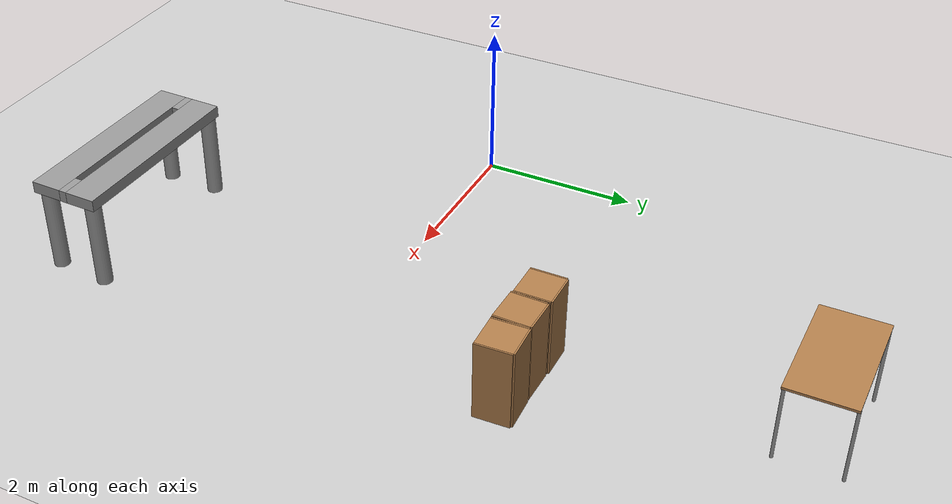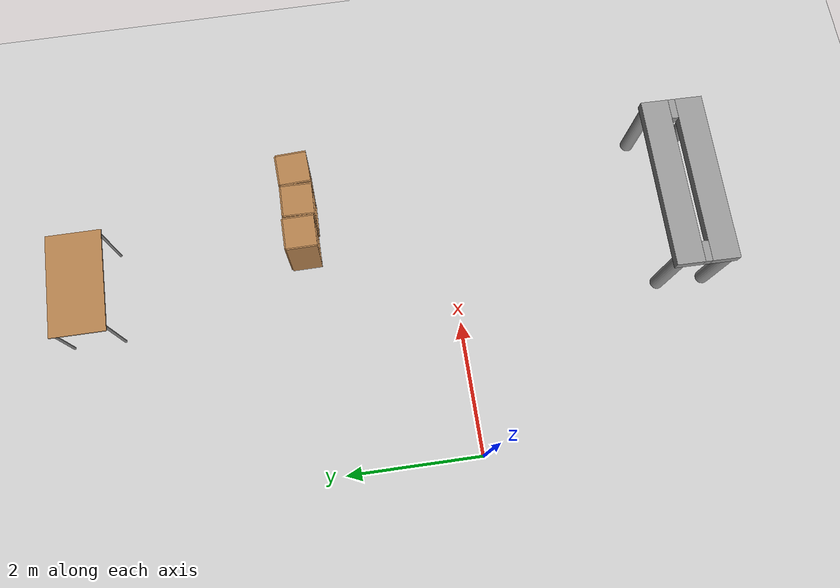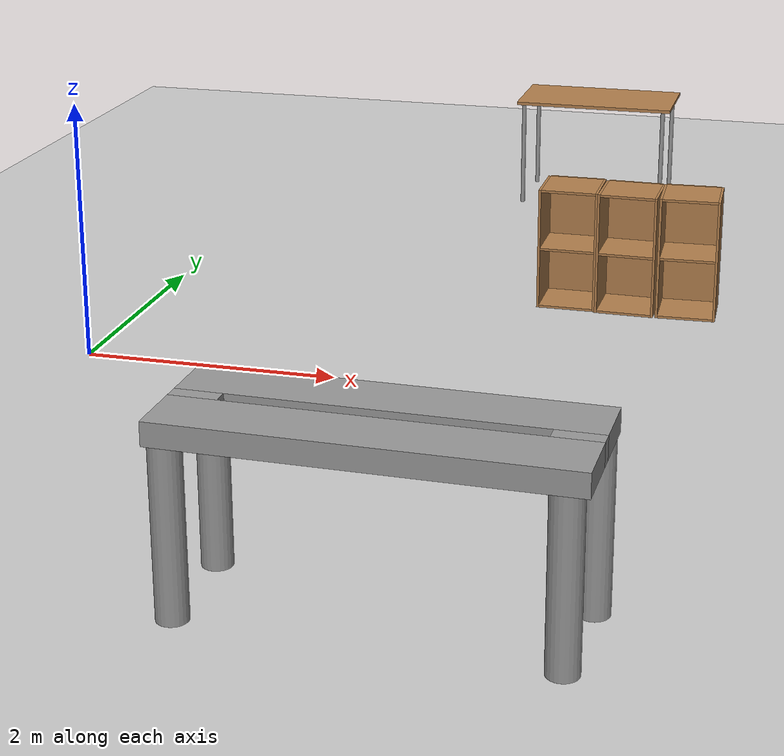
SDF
<sdf version="1.6">
 <world name="default">
  <model name="ground_plane">
   <static>1</static>
   <link name="link">
    <collision name="collision">
     <geometry><plane><normal>0 0 1</normal><size>100 100</size></plane></geometry>
     <surface><friction><ode><mu>100</mu><mu2>50</mu2></ode></friction></surface>
    </collision>
    <visual name="visual">
     <cast_shadows>0</cast_shadows>
     <geometry><plane><normal>0 0 1</normal><size>100 100</size></plane></geometry>
     <material>
      <script><uri>file://media/materials/scripts/gazebo.material</uri><name>Gazebo/Grey</name></script>
     </material>
    </visual>
   </link>
  </model>
  <model name="work_table_0">
   <link name="link_0">
    <pose>1.115 -0.35 -0.3125 0 -0 0</pose>
    <inertial>
     <mass>1</mass>
     <inertia><ixx>0.145833</ixx><ixy>0</ixy><ixz>0</ixz><iyy>0.145833</iyy><iyz>0</iyz><izz>0.125</izz></inertia>
    </inertial>
    <visual name="visual">
     <geometry><cylinder><radius>0.1</radius><length>1.1</length></cylinder></geometry>
     <material>
      <lighting>1</lighting>
      <script><uri>file://media/materials/scripts/gazebo.material</uri><name>Gazebo/Grey</name></script>
      <ambient>0.3 0.3 0.3 1</ambient>
      <diffuse>0.7 0.7 0.7 1</diffuse>
      <specular>0.01 0.01 0.01 1</specular>
      <emissive>0 0 0 1</emissive>
      <shader type="vertex"><normal_map>__default__</normal_map></shader>
     </material>
    </visual>
    <collision name="collision">
     <geometry><cylinder><radius>0.1</radius><length>1.1</length></cylinder></geometry>
     <surface>
      <friction>
       <ode><mu>1</mu><mu2>1</mu2><fdir1>0 0 0</fdir1><slip1>0</slip1><slip2>0</slip2></ode>
       <torsional>
        <coefficient>1</coefficient>
        <patch_radius>0</patch_radius>
        <surface_radius>0</surface_radius>
        <use_patch_radius>1</use_patch_radius>
        <ode><slip>0</slip></ode>
       </torsional>
      </friction>
      <bounce><restitution_coefficient>0</restitution_coefficient><threshold>1e+06</threshold></bounce>
      <contact>
       <collide_without_contact>0</collide_without_contact>
       <collide_without_contact_bitmask>1</collide_without_contact_bitmask>
       <collide_bitmask>1</collide_bitmask>
       <ode>
        <soft_cfm>0</soft_cfm>
        <soft_erp>0.2</soft_erp>
        <kp>1e+13</kp>
        <kd>1</kd>
        <max_vel>0.01</max_vel>
        <min_depth>0</min_depth>
       </ode>
       <bullet>
        <split_impulse>1</split_impulse>
        <split_impulse_penetration_threshold>-0.01</split_impulse_penetration_threshold>
        <soft_cfm>0</soft_cfm>
        <soft_erp>0.2</soft_erp>
        <kp>1e+13</kp>
        <kd>1</kd>
       </bullet>
      </contact>
     </surface>
    </collision>
   </link>
   <link name="link_0_clone">
    <pose>-1.145 -0.35 -0.3125 0 -0 0</pose>
    <inertial>
     <mass>1</mass>
     <inertia><ixx>0.145833</ixx><ixy>0</ixy><ixz>0</ixz><iyy>0.145833</iyy><iyz>0</iyz><izz>0.125</izz></inertia>
    </inertial>
    <visual name="visual">
     <geometry><cylinder><radius>0.1</radius><length>1.1</length></cylinder></geometry>
     <material>
      <lighting>1</lighting>
      <script><uri>file://media/materials/scripts/gazebo.material</uri><name>Gazebo/Grey</name></script>
      <ambient>0.3 0.3 0.3 1</ambient>
      <diffuse>0.7 0.7 0.7 1</diffuse>
      <specular>0.01 0.01 0.01 1</specular>
      <emissive>0 0 0 1</emissive>
      <shader type="vertex"><normal_map>__default__</normal_map></shader>
     </material>
    </visual>
    <collision name="collision">
     <geometry><cylinder><radius>0.1</radius><length>1.1</length></cylinder></geometry>
     <surface>
      <friction>
       <ode><mu>1</mu><mu2>1</mu2><fdir1>0 0 0</fdir1><slip1>0</slip1><slip2>0</slip2></ode>
       <torsional>
        <coefficient>1</coefficient>
        <patch_radius>0</patch_radius>
        <surface_radius>0</surface_radius>
        <use_patch_radius>1</use_patch_radius>
        <ode><slip>0</slip></ode>
       </torsional>
      </friction>
      <bounce><restitution_coefficient>0</restitution_coefficient><threshold>1e+06</threshold></bounce>
      <contact>
       <collide_without_contact>0</collide_without_contact>
       <collide_without_contact_bitmask>1</collide_without_contact_bitmask>
       <collide_bitmask>1</collide_bitmask>
       <ode>
        <soft_cfm>0</soft_cfm>
        <soft_erp>0.2</soft_erp>
        <kp>1e+13</kp>
        <kd>1</kd>
        <max_vel>0.01</max_vel>
        <min_depth>0</min_depth>
       </ode>
       <bullet>
        <split_impulse>1</split_impulse>
        <split_impulse_penetration_threshold>-0.01</split_impulse_penetration_threshold>
        <soft_cfm>0</soft_cfm>
        <soft_erp>0.2</soft_erp>
        <kp>1e+13</kp>
        <kd>1</kd>
       </bullet>
      </contact>
     </surface>
    </collision>
   </link>
   <link name="link_0_clone_0">
    <pose>-1.145 0.35 -0.3125 0 -0 0</pose>
    <inertial>
     <mass>1</mass>
     <inertia><ixx>0.145833</ixx><ixy>0</ixy><ixz>0</ixz><iyy>0.145833</iyy><iyz>0</iyz><izz>0.125</izz></inertia>
    </inertial>
    <visual name="visual">
     <geometry><cylinder><radius>0.1</radius><length>1.1</length></cylinder></geometry>
     <material>
      <lighting>1</lighting>
      <script><uri>file://media/materials/scripts/gazebo.material</uri><name>Gazebo/Grey</name></script>
      <ambient>0.3 0.3 0.3 1</ambient>
      <diffuse>0.7 0.7 0.7 1</diffuse>
      <specular>0.01 0.01 0.01 1</specular>
      <emissive>0 0 0 1</emissive>
      <shader type="vertex"><normal_map>__default__</normal_map></shader>
     </material>
    </visual>
    <collision name="collision">
     <geometry><cylinder><radius>0.1</radius><length>1.1</length></cylinder></geometry>
     <surface>
      <friction>
       <ode><mu>1</mu><mu2>1</mu2><fdir1>0 0 0</fdir1><slip1>0</slip1><slip2>0</slip2></ode>
       <torsional>
        <coefficient>1</coefficient>
        <patch_radius>0</patch_radius>
        <surface_radius>0</surface_radius>
        <use_patch_radius>1</use_patch_radius>
        <ode><slip>0</slip></ode>
       </torsional>
      </friction>
      <bounce><restitution_coefficient>0</restitution_coefficient><threshold>1e+06</threshold></bounce>
      <contact>
       <collide_without_contact>0</collide_without_contact>
       <collide_without_contact_bitmask>1</collide_without_contact_bitmask>
       <collide_bitmask>1</collide_bitmask>
       <ode>
        <soft_cfm>0</soft_cfm>
        <soft_erp>0.2</soft_erp>
        <kp>1e+13</kp>
        <kd>1</kd>
        <max_vel>0.01</max_vel>
        <min_depth>0</min_depth>
       </ode>
       <bullet>
        <split_impulse>1</split_impulse>
        <split_impulse_penetration_threshold>-0.01</split_impulse_penetration_threshold>
        <soft_cfm>0</soft_cfm>
        <soft_erp>0.2</soft_erp>
        <kp>1e+13</kp>
        <kd>1</kd>
       </bullet>
      </contact>
     </surface>
    </collision>
   </link>
   <link name="link_0_clone_1">
    <pose>1.155 0.35 -0.3125 0 -0 0</pose>
    <inertial>
     <mass>1</mass>
     <inertia><ixx>0.145833</ixx><ixy>0</ixy><ixz>0</ixz><iyy>0.145833</iyy><iyz>0</iyz><izz>0.125</izz></inertia>
    </inertial>
    <visual name="visual">
     <geometry><cylinder><radius>0.1</radius><length>1.1</length></cylinder></geometry>
     <material>
      <lighting>1</lighting>
      <script><uri>file://media/materials/scripts/gazebo.material</uri><name>Gazebo/Grey</name></script>
      <ambient>0.3 0.3 0.3 1</ambient>
      <diffuse>0.7 0.7 0.7 1</diffuse>
      <specular>0.01 0.01 0.01 1</specular>
      <emissive>0 0 0 1</emissive>
      <shader type="vertex"><normal_map>__default__</normal_map></shader>
     </material>
    </visual>
    <collision name="collision">
     <geometry><cylinder><radius>0.1</radius><length>1.1</length></cylinder></geometry>
     <surface>
      <friction>
       <ode><mu>1</mu><mu2>1</mu2><fdir1>0 0 0</fdir1><slip1>0</slip1><slip2>0</slip2></ode>
       <torsional>
        <coefficient>1</coefficient>
        <patch_radius>0</patch_radius>
        <surface_radius>0</surface_radius>
        <use_patch_radius>1</use_patch_radius>
        <ode><slip>0</slip></ode>
       </torsional>
      </friction>
      <bounce><restitution_coefficient>0</restitution_coefficient><threshold>1e+06</threshold></bounce>
      <contact>
       <collide_without_contact>0</collide_without_contact>
       <collide_without_contact_bitmask>1</collide_without_contact_bitmask>
       <collide_bitmask>1</collide_bitmask>
       <ode>
        <soft_cfm>0</soft_cfm>
        <soft_erp>0.2</soft_erp>
        <kp>1e+13</kp>
        <kd>1</kd>
        <max_vel>0.01</max_vel>
        <min_depth>0</min_depth>
       </ode>
       <bullet>
        <split_impulse>1</split_impulse>
        <split_impulse_penetration_threshold>-0.01</split_impulse_penetration_threshold>
        <soft_cfm>0</soft_cfm>
        <soft_erp>0.2</soft_erp>
        <kp>1e+13</kp>
        <kd>1</kd>
       </bullet>
      </contact>
     </surface>
    </collision>
   </link>
   <link name="link_1">
    <pose>0.005 -0.25 0.3125 0 -0 0</pose>
    <inertial>
     <mass>1</mass>
     <inertia>
      <ixx>0.166667</ixx>
      <ixy>0</ixy>
      <ixz>0</ixz>
      <iyy>0.166667</iyy>
      <iyz>0</iyz>
      <izz>0.166667</izz>
     </inertia>
    </inertial>
    <visual name="visual">
     <geometry><box><size>2.5 0.4 0.15</size></box></geometry>
     <material>
      <lighting>1</lighting>
      <script><uri>file://media/materials/scripts/gazebo.material</uri><name>Gazebo/Grey</name></script>
      <ambient>0.3 0.3 0.3 1</ambient>
      <diffuse>0.7 0.7 0.7 1</diffuse>
      <specular>0.01 0.01 0.01 1</specular>
      <emissive>0 0 0 1</emissive>
      <shader type="vertex"><normal_map>__default__</normal_map></shader>
     </material>
    </visual>
    <collision name="collision">
     <geometry><box><size>2.5 0.4 0.15</size></box></geometry>
     <surface>
      <friction>
       <ode><mu>1</mu><mu2>1</mu2><fdir1>0 0 0</fdir1><slip1>0</slip1><slip2>0</slip2></ode>
       <torsional>
        <coefficient>1</coefficient>
        <patch_radius>0</patch_radius>
        <surface_radius>0</surface_radius>
        <use_patch_radius>1</use_patch_radius>
        <ode><slip>0</slip></ode>
       </torsional>
      </friction>
      <bounce><restitution_coefficient>0</restitution_coefficient><threshold>1e+06</threshold></bounce>
      <contact>
       <collide_without_contact>0</collide_without_contact>
       <collide_without_contact_bitmask>1</collide_without_contact_bitmask>
       <collide_bitmask>1</collide_bitmask>
       <ode>
        <soft_cfm>0</soft_cfm>
        <soft_erp>0.2</soft_erp>
        <kp>1e+13</kp>
        <kd>1</kd>
        <max_vel>0.01</max_vel>
        <min_depth>0</min_depth>
       </ode>
       <bullet>
        <split_impulse>1</split_impulse>
        <split_impulse_penetration_threshold>-0.01</split_impulse_penetration_threshold>
        <soft_cfm>0</soft_cfm>
        <soft_erp>0.2</soft_erp>
        <kp>1e+13</kp>
        <kd>1</kd>
       </bullet>
      </contact>
     </surface>
    </collision>
   </link>
   <link name="link_1_clone">
    <pose>0.005 0.25 0.3125 0 -0 0</pose>
    <inertial>
     <mass>1</mass>
     <inertia>
      <ixx>0.166667</ixx>
      <ixy>0</ixy>
      <ixz>0</ixz>
      <iyy>0.166667</iyy>
      <iyz>0</iyz>
      <izz>0.166667</izz>
     </inertia>
    </inertial>
    <visual name="visual">
     <geometry><box><size>2.5 0.4 0.15</size></box></geometry>
     <material>
      <lighting>1</lighting>
      <script><uri>file://media/materials/scripts/gazebo.material</uri><name>Gazebo/Grey</name></script>
      <ambient>0.3 0.3 0.3 1</ambient>
      <diffuse>0.7 0.7 0.7 1</diffuse>
      <specular>0.01 0.01 0.01 1</specular>
      <emissive>0 0 0 1</emissive>
      <shader type="vertex"><normal_map>__default__</normal_map></shader>
     </material>
    </visual>
    <collision name="collision">
     <geometry><box><size>2.5 0.4 0.15</size></box></geometry>
     <surface>
      <friction>
       <ode><mu>1</mu><mu2>1</mu2><fdir1>0 0 0</fdir1><slip1>0</slip1><slip2>0</slip2></ode>
       <torsional>
        <coefficient>1</coefficient>
        <patch_radius>0</patch_radius>
        <surface_radius>0</surface_radius>
        <use_patch_radius>1</use_patch_radius>
        <ode><slip>0</slip></ode>
       </torsional>
      </friction>
      <bounce><restitution_coefficient>0</restitution_coefficient><threshold>1e+06</threshold></bounce>
      <contact>
       <collide_without_contact>0</collide_without_contact>
       <collide_without_contact_bitmask>1</collide_without_contact_bitmask>
       <collide_bitmask>1</collide_bitmask>
       <ode>
        <soft_cfm>0</soft_cfm>
        <soft_erp>0.2</soft_erp>
        <kp>1e+13</kp>
        <kd>1</kd>
        <max_vel>0.01</max_vel>
        <min_depth>0</min_depth>
       </ode>
       <bullet>
        <split_impulse>1</split_impulse>
        <split_impulse_penetration_threshold>-0.01</split_impulse_penetration_threshold>
        <soft_cfm>0</soft_cfm>
        <soft_erp>0.2</soft_erp>
        <kp>1e+13</kp>
        <kd>1</kd>
       </bullet>
      </contact>
     </surface>
    </collision>
   </link>
   <link name="link_1_clone_0">
    <pose>-1.095 0 0.3125 0 -0 0</pose>
    <inertial>
     <mass>1</mass>
     <inertia>
      <ixx>0.166667</ixx>
      <ixy>0</ixy>
      <ixz>0</ixz>
      <iyy>0.166667</iyy>
      <iyz>0</iyz>
      <izz>0.166667</izz>
     </inertia>
    </inertial>
    <visual name="visual">
     <geometry><box><size>0.3 0.1 0.15</size></box></geometry>
     <material>
      <lighting>1</lighting>
      <script><uri>file://media/materials/scripts/gazebo.material</uri><name>Gazebo/Grey</name></script>
      <ambient>0.3 0.3 0.3 1</ambient>
      <diffuse>0.7 0.7 0.7 1</diffuse>
      <specular>0.01 0.01 0.01 1</specular>
      <emissive>0 0 0 1</emissive>
      <shader type="vertex"><normal_map>__default__</normal_map></shader>
     </material>
    </visual>
    <collision name="collision">
     <geometry><box><size>0.3 0.1 0.15</size></box></geometry>
     <surface>
      <friction>
       <ode><mu>1</mu><mu2>1</mu2><fdir1>0 0 0</fdir1><slip1>0</slip1><slip2>0</slip2></ode>
       <torsional>
        <coefficient>1</coefficient>
        <patch_radius>0</patch_radius>
        <surface_radius>0</surface_radius>
        <use_patch_radius>1</use_patch_radius>
        <ode><slip>0</slip></ode>
       </torsional>
      </friction>
      <bounce><restitution_coefficient>0</restitution_coefficient><threshold>1e+06</threshold></bounce>
      <contact>
       <collide_without_contact>0</collide_without_contact>
       <collide_without_contact_bitmask>1</collide_without_contact_bitmask>
       <collide_bitmask>1</collide_bitmask>
       <ode>
        <soft_cfm>0</soft_cfm>
        <soft_erp>0.2</soft_erp>
        <kp>1e+13</kp>
        <kd>1</kd>
        <max_vel>0.01</max_vel>
        <min_depth>0</min_depth>
       </ode>
       <bullet>
        <split_impulse>1</split_impulse>
        <split_impulse_penetration_threshold>-0.01</split_impulse_penetration_threshold>
        <soft_cfm>0</soft_cfm>
        <soft_erp>0.2</soft_erp>
        <kp>1e+13</kp>
        <kd>1</kd>
       </bullet>
      </contact>
     </surface>
    </collision>
   </link>
   <link name="link_1_clone_0_clone">
    <pose>1.105 0 0.3125 0 -0 0</pose>
    <inertial>
     <mass>1</mass>
     <inertia>
      <ixx>0.166667</ixx>
      <ixy>0</ixy>
      <ixz>0</ixz>
      <iyy>0.166667</iyy>
      <iyz>0</iyz>
      <izz>0.166667</izz>
     </inertia>
    </inertial>
    <visual name="visual">
     <geometry><box><size>0.3 0.1 0.15</size></box></geometry>
     <material>
      <lighting>1</lighting>
      <script><uri>file://media/materials/scripts/gazebo.material</uri><name>Gazebo/Grey</name></script>
      <ambient>0.3 0.3 0.3 1</ambient>
      <diffuse>0.7 0.7 0.7 1</diffuse>
      <specular>0.01 0.01 0.01 1</specular>
      <emissive>0 0 0 1</emissive>
      <shader type="vertex"><normal_map>__default__</normal_map></shader>
     </material>
    </visual>
    <collision name="collision">
     <geometry><box><size>0.3 0.1 0.15</size></box></geometry>
     <surface>
      <friction>
       <ode><mu>1</mu><mu2>1</mu2><fdir1>0 0 0</fdir1><slip1>0</slip1><slip2>0</slip2></ode>
       <torsional>
        <coefficient>1</coefficient>
        <patch_radius>0</patch_radius>
        <surface_radius>0</surface_radius>
        <use_patch_radius>1</use_patch_radius>
        <ode><slip>0</slip></ode>
       </torsional>
      </friction>
      <bounce><restitution_coefficient>0</restitution_coefficient><threshold>1e+06</threshold></bounce>
      <contact>
       <collide_without_contact>0</collide_without_contact>
       <collide_without_contact_bitmask>1</collide_without_contact_bitmask>
       <collide_bitmask>1</collide_bitmask>
       <ode>
        <soft_cfm>0</soft_cfm>
        <soft_erp>0.2</soft_erp>
        <kp>1e+13</kp>
        <kd>1</kd>
        <max_vel>0.01</max_vel>
        <min_depth>0</min_depth>
       </ode>
       <bullet>
        <split_impulse>1</split_impulse>
        <split_impulse_penetration_threshold>-0.01</split_impulse_penetration_threshold>
        <soft_cfm>0</soft_cfm>
        <soft_erp>0.2</soft_erp>
        <kp>1e+13</kp>
        <kd>1</kd>
       </bullet>
      </contact>
     </surface>
    </collision>
   </link>
   <joint name="link_1_JOINT_0" type="fixed">
    <parent>link_1</parent>
    <child>link_1_clone_0</child>
    <physics>
     <ode><limit><cfm>0</cfm><erp>0.2</erp></limit><suspension><cfm>0</cfm><erp>0.2</erp></suspension></ode>
    </physics>
   </joint>
   <joint name="link_1_JOINT_1" type="fixed">
    <parent>link_1</parent>
    <child>link_1_clone_0_clone</child>
    <physics>
     <ode><limit><cfm>0</cfm><erp>0.2</erp></limit><suspension><cfm>0</cfm><erp>0.2</erp></suspension></ode>
    </physics>
   </joint>
   <joint name="link_1_JOINT_2" type="fixed">
    <parent>link_1</parent>
    <child>link_1_clone</child>
    <physics>
     <ode><limit><cfm>0</cfm><erp>0.2</erp></limit><suspension><cfm>0</cfm><erp>0.2</erp></suspension></ode>
    </physics>
   </joint>
   <joint name="link_1_JOINT_3" type="fixed">
    <parent>link_1</parent>
    <child>link_0_clone</child>
    <physics>
     <ode><limit><cfm>0</cfm><erp>0.2</erp></limit><suspension><cfm>0</cfm><erp>0.2</erp></suspension></ode>
    </physics>
   </joint>
   <joint name="link_1_JOINT_4" type="fixed">
    <parent>link_1</parent>
    <child>link_0</child>
    <physics>
     <ode><limit><cfm>0</cfm><erp>0.2</erp></limit><suspension><cfm>0</cfm><erp>0.2</erp></suspension></ode>
    </physics>
   </joint>
   <joint name="link_1_clone_JOINT_5" type="fixed">
    <parent>link_1_clone</parent>
    <child>link_0_clone_0</child>
    <physics>
     <ode><limit><cfm>0</cfm><erp>0.2</erp></limit><suspension><cfm>0</cfm><erp>0.2</erp></suspension></ode>
    </physics>
   </joint>
   <joint name="link_1_clone_JOINT_6" type="fixed">
    <parent>link_1_clone</parent>
    <child>link_0_clone_1</child>
    <physics>
     <ode><limit><cfm>0</cfm><erp>0.2</erp></limit><suspension><cfm>0</cfm><erp>0.2</erp></suspension></ode>
    </physics>
   </joint>
   <static>0</static>
   <pose>3.34416 -3.43375 0.862499 5e-06 -0 -0.017501</pose>
  </model>
  <model name="table_6">
   <static>1</static>
   <link name="link">
    <collision name="surface">
     <pose>0 0 1 0 -0 0</pose>
     <geometry><box><size>1.5 0.8 0.03</size></box></geometry>
     <surface><friction><ode><mu>0.6</mu><mu2>0.6</mu2></ode></friction></surface>
    </collision>
    <visual name="visual1">
     <pose>0 0 1 0 -0 0</pose>
     <geometry><box><size>1.5 0.8 0.03</size></box></geometry>
     <material>
      <script><uri>file://media/materials/scripts/gazebo.material</uri><name>Gazebo/Wood</name></script>
     </material>
    </visual>
    <collision name="front_left_leg">
     <pose>0.68 0.38 0.5 0 -0 0</pose>
     <geometry><cylinder><radius>0.02</radius><length>1</length></cylinder></geometry>
    </collision>
    <visual name="front_left_leg">
     <pose>0.68 0.38 0.5 0 -0 0</pose>
     <geometry><cylinder><radius>0.02</radius><length>1</length></cylinder></geometry>
     <material>
      <script><uri>file://media/materials/scripts/gazebo.material</uri><name>Gazebo/Grey</name></script>
     </material>
    </visual>
    <collision name="front_right_leg">
     <pose>0.68 -0.38 0.5 0 -0 0</pose>
     <geometry><cylinder><radius>0.02</radius><length>1</length></cylinder></geometry>
    </collision>
    <visual name="front_right_leg">
     <pose>0.68 -0.38 0.5 0 -0 0</pose>
     <geometry><cylinder><radius>0.02</radius><length>1</length></cylinder></geometry>
     <material>
      <script><uri>file://media/materials/scripts/gazebo.material</uri><name>Gazebo/Grey</name></script>
     </material>
    </visual>
    <collision name="back_right_leg">
     <pose>-0.68 -0.38 0.5 0 -0 0</pose>
     <geometry><cylinder><radius>0.02</radius><length>1</length></cylinder></geometry>
    </collision>
    <visual name="back_right_leg">
     <pose>-0.68 -0.38 0.5 0 -0 0</pose>
     <geometry><cylinder><radius>0.02</radius><length>1</length></cylinder></geometry>
     <material>
      <script><uri>file://media/materials/scripts/gazebo.material</uri><name>Gazebo/Grey</name></script>
     </material>
    </visual>
    <collision name="back_left_leg">
     <pose>-0.68 0.38 0.5 0 -0 0</pose>
     <geometry><cylinder><radius>0.02</radius><length>1</length></cylinder></geometry>
    </collision>
    <visual name="back_left_leg">
     <pose>-0.68 0.38 0.5 0 -0 0</pose>
     <geometry><cylinder><radius>0.02</radius><length>1</length></cylinder></geometry>
     <material>
      <script><uri>file://media/materials/scripts/gazebo.material</uri><name>Gazebo/Grey</name></script>
     </material>
    </visual>
   </link>
   <pose>3.11306 5.38895 0 0 -0 0</pose>
  </model>
  <model name="cabinet">
   <static>1</static>
   <link name="cabinet_bottom_plate">
    <inertial>
     <pose>0 0 -1 0 -0 0</pose>
     <inertia><ixx>2.05</ixx><ixy>0</ixy><ixz>0</ixz><iyy>2.05</iyy><iyz>0</iyz><izz>2.05</izz></inertia>
     <mass>25</mass>
    </inertial>
    <collision name="cabinet_bottom_plate_geom">
     <pose>0 0 0.01 0 -0 0</pose>
     <geometry><box><size>0.45 0.45 0.02</size></box></geometry>
    </collision>
    <visual name="cabinet_bottom_plate_geom_visual">
     <pose>0 0 0.01 0 -0 0</pose>
     <geometry><box><size>0.45 0.45 0.02</size></box></geometry>
     <material>
      <script><uri>file://media/materials/scripts/gazebo.material</uri><name>Gazebo/Wood</name></script>
     </material>
    </visual>
    <collision name="cabinet_bottom_plate_geom_cabinet_back_plate">
     <pose>0.235 0 0.51 0 -0 0</pose>
     <geometry><box><size>0.02 0.45 1.02</size></box></geometry>
    </collision>
    <visual name="cabinet_bottom_plate_geom_cabinet_back_plate_visual">
     <pose>0.235 0 0.51 0 -0 0</pose>
     <geometry><box><size>0.02 0.45 1.02</size></box></geometry>
     <material>
      <script><uri>file://media/materials/scripts/gazebo.material</uri><name>Gazebo/Wood</name></script>
     </material>
    </visual>
    <collision name="cabinet_bottom_plate_geom_cabinet_left_plate">
     <pose>0 0.235 0.51 0 -0 0</pose>
     <geometry><box><size>0.45 0.02 1.02</size></box></geometry>
    </collision>
    <visual name="cabinet_bottom_plate_geom_cabinet_left_plate_visual">
     <pose>0 0.235 0.51 0 -0 0</pose>
     <geometry><box><size>0.45 0.02 1.02</size></box></geometry>
     <material>
      <script><uri>file://media/materials/scripts/gazebo.material</uri><name>Gazebo/Wood</name></script>
     </material>
    </visual>
    <collision name="cabinet_bottom_plate_geom_cabinet_middle_plate">
     <pose>0 0 0.51 0 -0 0</pose>
     <geometry><box><size>0.45 0.45 0.02</size></box></geometry>
    </collision>
    <visual name="cabinet_bottom_plate_geom_cabinet_middle_plate_visual">
     <pose>0 0 0.51 0 -0 0</pose>
     <geometry><box><size>0.45 0.45 0.02</size></box></geometry>
     <material>
      <script><uri>file://media/materials/scripts/gazebo.material</uri><name>Gazebo/Wood</name></script>
     </material>
    </visual>
    <collision name="cabinet_bottom_plate_geom_cabinet_right_plate">
     <pose>0 -0.235 0.51 0 -0 0</pose>
     <geometry><box><size>0.45 0.02 1.02</size></box></geometry>
    </collision>
    <visual name="cabinet_bottom_plate_geom_cabinet_right_plate_visual">
     <pose>0 -0.235 0.51 0 -0 0</pose>
     <geometry><box><size>0.45 0.02 1.02</size></box></geometry>
     <material>
      <script><uri>file://media/materials/scripts/gazebo.material</uri><name>Gazebo/Wood</name></script>
     </material>
    </visual>
    <collision name="cabinet_bottom_plate_geom_cabinet_top_plate">
     <pose>0 0 1.01 0 -0 0</pose>
     <geometry><box><size>0.45 0.45 0.02</size></box></geometry>
    </collision>
    <visual name="cabinet_bottom_plate_geom_cabinet_top_plate_visual">
     <pose>0 0 1.01 0 -0 0</pose>
     <geometry><box><size>0.45 0.45 0.02</size></box></geometry>
     <material>
      <script><uri>file://media/materials/scripts/gazebo.material</uri><name>Gazebo/Wood</name></script>
     </material>
    </visual>
   </link>
   <pose>3.91282 2.1568 0 0 -0 1.55423</pose>
  </model>
  <model name="cabinet_2">
   <static>1</static>
   <link name="cabinet_bottom_plate">
    <inertial>
     <pose>0 0 -1 0 -0 0</pose>
     <inertia><ixx>2.05</ixx><ixy>0</ixy><ixz>0</ixz><iyy>2.05</iyy><iyz>0</iyz><izz>2.05</izz></inertia>
     <mass>25</mass>
    </inertial>
    <collision name="cabinet_bottom_plate_geom">
     <pose>0 0 0.01 0 -0 0</pose>
     <geometry><box><size>0.45 0.45 0.02</size></box></geometry>
    </collision>
    <visual name="cabinet_bottom_plate_geom_visual">
     <pose>0 0 0.01 0 -0 0</pose>
     <geometry><box><size>0.45 0.45 0.02</size></box></geometry>
     <material>
      <script><uri>file://media/materials/scripts/gazebo.material</uri><name>Gazebo/Wood</name></script>
     </material>
    </visual>
    <collision name="cabinet_bottom_plate_geom_cabinet_back_plate">
     <pose>0.235 0 0.51 0 -0 0</pose>
     <geometry><box><size>0.02 0.45 1.02</size></box></geometry>
    </collision>
    <visual name="cabinet_bottom_plate_geom_cabinet_back_plate_visual">
     <pose>0.235 0 0.51 0 -0 0</pose>
     <geometry><box><size>0.02 0.45 1.02</size></box></geometry>
     <material>
      <script><uri>file://media/materials/scripts/gazebo.material</uri><name>Gazebo/Wood</name></script>
     </material>
    </visual>
    <collision name="cabinet_bottom_plate_geom_cabinet_left_plate">
     <pose>0 0.235 0.51 0 -0 0</pose>
     <geometry><box><size>0.45 0.02 1.02</size></box></geometry>
    </collision>
    <visual name="cabinet_bottom_plate_geom_cabinet_left_plate_visual">
     <pose>0 0.235 0.51 0 -0 0</pose>
     <geometry><box><size>0.45 0.02 1.02</size></box></geometry>
     <material>
      <script><uri>file://media/materials/scripts/gazebo.material</uri><name>Gazebo/Wood</name></script>
     </material>
    </visual>
    <collision name="cabinet_bottom_plate_geom_cabinet_middle_plate">
     <pose>0 0 0.51 0 -0 0</pose>
     <geometry><box><size>0.45 0.45 0.02</size></box></geometry>
    </collision>
    <visual name="cabinet_bottom_plate_geom_cabinet_middle_plate_visual">
     <pose>0 0 0.51 0 -0 0</pose>
     <geometry><box><size>0.45 0.45 0.02</size></box></geometry>
     <material>
      <script><uri>file://media/materials/scripts/gazebo.material</uri><name>Gazebo/Wood</name></script>
     </material>
    </visual>
    <collision name="cabinet_bottom_plate_geom_cabinet_right_plate">
     <pose>0 -0.235 0.51 0 -0 0</pose>
     <geometry><box><size>0.45 0.02 1.02</size></box></geometry>
    </collision>
    <visual name="cabinet_bottom_plate_geom_cabinet_right_plate_visual">
     <pose>0 -0.235 0.51 0 -0 0</pose>
     <geometry><box><size>0.45 0.02 1.02</size></box></geometry>
     <material>
      <script><uri>file://media/materials/scripts/gazebo.material</uri><name>Gazebo/Wood</name></script>
     </material>
    </visual>
    <collision name="cabinet_bottom_plate_geom_cabinet_top_plate">
     <pose>0 0 1.01 0 -0 0</pose>
     <geometry><box><size>0.45 0.45 0.02</size></box></geometry>
    </collision>
    <visual name="cabinet_bottom_plate_geom_cabinet_top_plate_visual">
     <pose>0 0 1.01 0 -0 0</pose>
     <geometry><box><size>0.45 0.45 0.02</size></box></geometry>
     <material>
      <script><uri>file://media/materials/scripts/gazebo.material</uri><name>Gazebo/Wood</name></script>
     </material>
    </visual>
   </link>
   <pose>4.40736 2.16692 0 0 -0 1.61191</pose>
  </model>
  <model name="cabinet_3">
   <static>1</static>
   <link name="cabinet_bottom_plate">
    <inertial>
     <pose>0 0 -1 0 -0 0</pose>
     <inertia><ixx>2.05</ixx><ixy>0</ixy><ixz>0</ixz><iyy>2.05</iyy><iyz>0</iyz><izz>2.05</izz></inertia>
     <mass>25</mass>
    </inertial>
    <collision name="cabinet_bottom_plate_geom">
     <pose>0 0 0.01 0 -0 0</pose>
     <geometry><box><size>0.45 0.45 0.02</size></box></geometry>
    </collision>
    <visual name="cabinet_bottom_plate_geom_visual">
     <pose>0 0 0.01 0 -0 0</pose>
     <geometry><box><size>0.45 0.45 0.02</size></box></geometry>
     <material>
      <script><uri>file://media/materials/scripts/gazebo.material</uri><name>Gazebo/Wood</name></script>
     </material>
    </visual>
    <collision name="cabinet_bottom_plate_geom_cabinet_back_plate">
     <pose>0.235 0 0.51 0 -0 0</pose>
     <geometry><box><size>0.02 0.45 1.02</size></box></geometry>
    </collision>
    <visual name="cabinet_bottom_plate_geom_cabinet_back_plate_visual">
     <pose>0.235 0 0.51 0 -0 0</pose>
     <geometry><box><size>0.02 0.45 1.02</size></box></geometry>
     <material>
      <script><uri>file://media/materials/scripts/gazebo.material</uri><name>Gazebo/Wood</name></script>
     </material>
    </visual>
    <collision name="cabinet_bottom_plate_geom_cabinet_left_plate">
     <pose>0 0.235 0.51 0 -0 0</pose>
     <geometry><box><size>0.45 0.02 1.02</size></box></geometry>
    </collision>
    <visual name="cabinet_bottom_plate_geom_cabinet_left_plate_visual">
     <pose>0 0.235 0.51 0 -0 0</pose>
     <geometry><box><size>0.45 0.02 1.02</size></box></geometry>
     <material>
      <script><uri>file://media/materials/scripts/gazebo.material</uri><name>Gazebo/Wood</name></script>
     </material>
    </visual>
    <collision name="cabinet_bottom_plate_geom_cabinet_middle_plate">
     <pose>0 0 0.51 0 -0 0</pose>
     <geometry><box><size>0.45 0.45 0.02</size></box></geometry>
    </collision>
    <visual name="cabinet_bottom_plate_geom_cabinet_middle_plate_visual">
     <pose>0 0 0.51 0 -0 0</pose>
     <geometry><box><size>0.45 0.45 0.02</size></box></geometry>
     <material>
      <script><uri>file://media/materials/scripts/gazebo.material</uri><name>Gazebo/Wood</name></script>
     </material>
    </visual>
    <collision name="cabinet_bottom_plate_geom_cabinet_right_plate">
     <pose>0 -0.235 0.51 0 -0 0</pose>
     <geometry><box><size>0.45 0.02 1.02</size></box></geometry>
    </collision>
    <visual name="cabinet_bottom_plate_geom_cabinet_right_plate_visual">
     <pose>0 -0.235 0.51 0 -0 0</pose>
     <geometry><box><size>0.45 0.02 1.02</size></box></geometry>
     <material>
      <script><uri>file://media/materials/scripts/gazebo.material</uri><name>Gazebo/Wood</name></script>
     </material>
    </visual>
    <collision name="cabinet_bottom_plate_geom_cabinet_top_plate">
     <pose>0 0 1.01 0 -0 0</pose>
     <geometry><box><size>0.45 0.45 0.02</size></box></geometry>
    </collision>
    <visual name="cabinet_bottom_plate_geom_cabinet_top_plate_visual">
     <pose>0 0 1.01 0 -0 0</pose>
     <geometry><box><size>0.45 0.45 0.02</size></box></geometry>
     <material>
      <script><uri>file://media/materials/scripts/gazebo.material</uri><name>Gazebo/Wood</name></script>
     </material>
    </visual>
   </link>
   <pose>3.4176 2.17721 0 0 -0 1.57506</pose>
  </model>
 </world>
</sdf>
